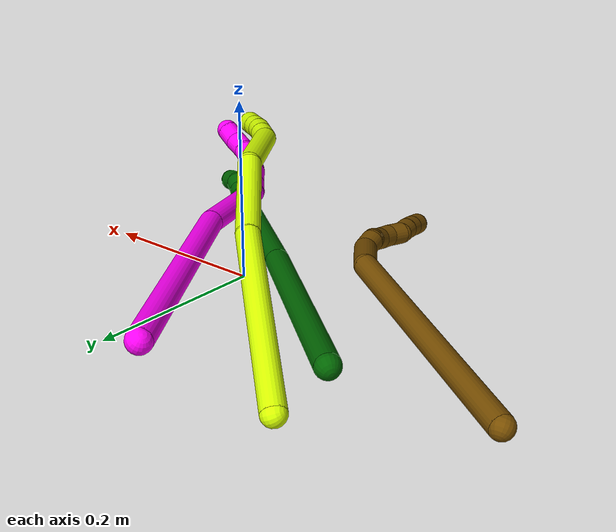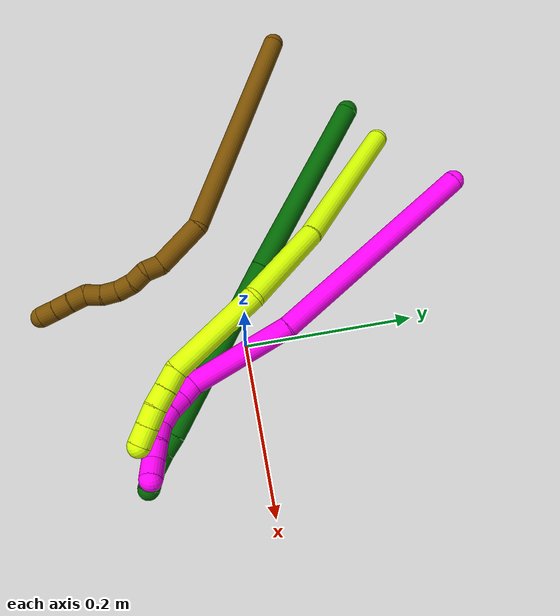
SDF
<sdf version="1.7">
 <world name="default">
  <model name="6">
   <static>0</static>
   <link name="6">
    <collision name="collision-cylinder-e_1_1_4">
     <pose>0.030223 -0.023665 0.104901 0.221879 0.27398 0.03071</pose>
     <geometry><cylinder><radius>0.0125</radius><length>0.223407</length></cylinder></geometry>
     <surface>
      <friction><ode><mu>1.16</mu><mu2>1.16</mu2><slip1>0</slip1><slip2>0</slip2></ode></friction>
      <contact><ode><kp>1e+06</kp><kd>1</kd><max_vel>0</max_vel><min_depth>0.001</min_depth></ode></contact>
     </surface>
    </collision>
    <visual name="visual-cylinder-e_1_1_4">
     <pose>0.030223 -0.023665 0.104901 0.221879 0.27398 0.03071</pose>
     <geometry><cylinder><radius>0.0125</radius><length>0.223407</length></cylinder></geometry>
     <material><ambient>0 0.392157 0.003922 1</ambient></material>
    </visual>
    <collision name="collision-cylinder-e_2_4_5">
     <pose>0.092264 -0.068843 0.309216 0.213117 0.303173 0.032676</pose>
     <geometry><cylinder><radius>0.0125</radius><length>0.213151</length></cylinder></geometry>
     <surface>
      <friction><ode><mu>1.16</mu><mu2>1.16</mu2><slip1>0</slip1><slip2>0</slip2></ode></friction>
      <contact><ode><kp>1e+06</kp><kd>1</kd><max_vel>0</max_vel><min_depth>0.001</min_depth></ode></contact>
     </surface>
    </collision>
    <visual name="visual-cylinder-e_2_4_5">
     <pose>0.092264 -0.068843 0.309216 0.213117 0.303173 0.032676</pose>
     <geometry><cylinder><radius>0.0125</radius><length>0.213151</length></cylinder></geometry>
     <material><ambient>0 0.392157 0.003922 1</ambient></material>
    </visual>
    <collision name="collision-cylinder-e_3_5_6">
     <pose>0.126491 -0.093307 0.419227 0.271483 0.215581 0.029557</pose>
     <geometry><cylinder><radius>0.0125</radius><length>0.022521</length></cylinder></geometry>
     <surface>
      <friction><ode><mu>1.16</mu><mu2>1.16</mu2><slip1>0</slip1><slip2>0</slip2></ode></friction>
      <contact><ode><kp>1e+06</kp><kd>1</kd><max_vel>0</max_vel><min_depth>0.001</min_depth></ode></contact>
     </surface>
    </collision>
    <visual name="visual-cylinder-e_3_5_6">
     <pose>0.126491 -0.093307 0.419227 0.271483 0.215581 0.029557</pose>
     <geometry><cylinder><radius>0.0125</radius><length>0.022521</length></cylinder></geometry>
     <material><ambient>0 0.392157 0.003922 1</ambient></material>
    </visual>
    <collision name="collision-cylinder-e_4_6_7">
     <pose>0.130087 -0.097475 0.440047 0.118683 0.114765 0.006826</pose>
     <geometry><cylinder><radius>0.0125</radius><length>0.020727</length></cylinder></geometry>
     <surface>
      <friction><ode><mu>1.16</mu><mu2>1.16</mu2><slip1>0</slip1><slip2>0</slip2></ode></friction>
      <contact><ode><kp>1e+06</kp><kd>1</kd><max_vel>0</max_vel><min_depth>0.001</min_depth></ode></contact>
     </surface>
    </collision>
    <visual name="visual-cylinder-e_4_6_7">
     <pose>0.130087 -0.097475 0.440047 0.118683 0.114765 0.006826</pose>
     <geometry><cylinder><radius>0.0125</radius><length>0.020727</length></cylinder></geometry>
     <material><ambient>0 0.392157 0.003922 1</ambient></material>
    </visual>
    <collision name="collision-cylinder-e_5_7_2">
     <pose>0.136096 -0.099125 0.45913 0.048622 0.497894 0.012363</pose>
     <geometry><cylinder><radius>0.0125</radius><length>0.020194</length></cylinder></geometry>
     <surface>
      <friction><ode><mu>1.16</mu><mu2>1.16</mu2><slip1>0</slip1><slip2>0</slip2></ode></friction>
      <contact><ode><kp>1e+06</kp><kd>1</kd><max_vel>0</max_vel><min_depth>0.001</min_depth></ode></contact>
     </surface>
    </collision>
    <visual name="visual-cylinder-e_5_7_2">
     <pose>0.136096 -0.099125 0.45913 0.048622 0.497894 0.012363</pose>
     <geometry><cylinder><radius>0.0125</radius><length>0.020194</length></cylinder></geometry>
     <material><ambient>0 0.392157 0.003922 1</ambient></material>
    </visual>
    <collision name="collision-sphere-2">
     <pose>0.140918 -0.099557 0.467991 0 -0 0</pose>
     <geometry><sphere><radius>0.0125</radius></sphere></geometry>
     <surface>
      <friction><ode><mu>1.16</mu><mu2>1.16</mu2><slip1>0</slip1><slip2>0</slip2></ode></friction>
      <contact><ode><kp>1e+06</kp><kd>1</kd><max_vel>0</max_vel><min_depth>0.001</min_depth></ode></contact>
     </surface>
    </collision>
    <visual name="visual-sphere-2">
     <pose>0.140918 -0.099557 0.467991 0 -0 0</pose>
     <geometry><sphere><radius>0.0125</radius></sphere></geometry>
     <material><ambient>0 0.392157 0.003922 1</ambient></material>
    </visual>
    <collision name="collision-sphere-7">
     <pose>0.131273 -0.098694 0.45027 0 -0 0</pose>
     <geometry><sphere><radius>0.0125</radius></sphere></geometry>
     <surface>
      <friction><ode><mu>1.16</mu><mu2>1.16</mu2><slip1>0</slip1><slip2>0</slip2></ode></friction>
      <contact><ode><kp>1e+06</kp><kd>1</kd><max_vel>0</max_vel><min_depth>0.001</min_depth></ode></contact>
     </surface>
    </collision>
    <visual name="visual-sphere-7">
     <pose>0.131273 -0.098694 0.45027 0 -0 0</pose>
     <geometry><sphere><radius>0.0125</radius></sphere></geometry>
     <material><ambient>0 0.392157 0.003922 1</ambient></material>
    </visual>
    <collision name="collision-sphere-6">
     <pose>0.1289 -0.096256 0.429824 0 -0 0</pose>
     <geometry><sphere><radius>0.0125</radius></sphere></geometry>
     <surface>
      <friction><ode><mu>1.16</mu><mu2>1.16</mu2><slip1>0</slip1><slip2>0</slip2></ode></friction>
      <contact><ode><kp>1e+06</kp><kd>1</kd><max_vel>0</max_vel><min_depth>0.001</min_depth></ode></contact>
     </surface>
    </collision>
    <visual name="visual-sphere-6">
     <pose>0.1289 -0.096256 0.429824 0 -0 0</pose>
     <geometry><sphere><radius>0.0125</radius></sphere></geometry>
     <material><ambient>0 0.392157 0.003922 1</ambient></material>
    </visual>
    <collision name="collision-sphere-5">
     <pose>0.124082 -0.090357 0.40863 0 -0 0</pose>
     <geometry><sphere><radius>0.0125</radius></sphere></geometry>
     <surface>
      <friction><ode><mu>1.16</mu><mu2>1.16</mu2><slip1>0</slip1><slip2>0</slip2></ode></friction>
      <contact><ode><kp>1e+06</kp><kd>1</kd><max_vel>0</max_vel><min_depth>0.001</min_depth></ode></contact>
     </surface>
    </collision>
    <visual name="visual-sphere-5">
     <pose>0.124082 -0.090357 0.40863 0 -0 0</pose>
     <geometry><sphere><radius>0.0125</radius></sphere></geometry>
     <material><ambient>0 0.392157 0.003922 1</ambient></material>
    </visual>
    <collision name="collision-sphere-1">
     <geometry><sphere><radius>0.0125</radius></sphere></geometry>
     <surface>
      <friction><ode><mu>1.16</mu><mu2>1.16</mu2><slip1>0</slip1><slip2>0</slip2></ode></friction>
      <contact><ode><kp>1e+06</kp><kd>1</kd><max_vel>0</max_vel><min_depth>0.001</min_depth></ode></contact>
     </surface>
    </collision>
    <visual name="visual-sphere-1">
     <geometry><sphere><radius>0.0125</radius></sphere></geometry>
     <material><ambient>0 0.392157 0.003922 1</ambient></material>
    </visual>
    <collision name="collision-sphere-4">
     <pose>0.060446 -0.04733 0.209802 0 -0 0</pose>
     <geometry><sphere><radius>0.0125</radius></sphere></geometry>
     <surface>
      <friction><ode><mu>1.16</mu><mu2>1.16</mu2><slip1>0</slip1><slip2>0</slip2></ode></friction>
      <contact><ode><kp>1e+06</kp><kd>1</kd><max_vel>0</max_vel><min_depth>0.001</min_depth></ode></contact>
     </surface>
    </collision>
    <visual name="visual-sphere-4">
     <pose>0.060446 -0.04733 0.209802 0 -0 0</pose>
     <geometry><sphere><radius>0.0125</radius></sphere></geometry>
     <material><ambient>0 0.392157 0.003922 1</ambient></material>
    </visual>
    <inertial>
     <pose>0.069423 -0.052169 0.234358 0 -0 0</pose>
     <mass>0.5</mass>
     <inertia>
      <ixx>0.001749</ixx>
      <ixy>0</ixy>
      <ixz>0</ixz>
      <iyy>0.001765</iyy>
      <iyz>0</iyz>
      <izz>-9.8e-05</izz>
     </inertia>
    </inertial>
   </link>
   <pose>-0.255596 0.169237 0.051271 0.680071 1.14099 0.195525</pose>
  </model>
  <model name="10">
   <static>0</static>
   <link name="10">
    <collision name="collision-cylinder-e_1_1_4">
     <pose>0.033992 -0.10799 0.063545 1.03892 0.264909 0.152086</pose>
     <geometry><cylinder><radius>0.0125</radius><length>0.259656</length></cylinder></geometry>
     <surface>
      <friction><ode><mu>1.16</mu><mu2>1.16</mu2><slip1>0</slip1><slip2>0</slip2></ode></friction>
      <contact><ode><kp>1e+06</kp><kd>1</kd><max_vel>0</max_vel><min_depth>0.001</min_depth></ode></contact>
     </surface>
    </collision>
    <visual name="visual-cylinder-e_1_1_4">
     <pose>0.033992 -0.10799 0.063545 1.03892 0.264909 0.152086</pose>
     <geometry><cylinder><radius>0.0125</radius><length>0.259656</length></cylinder></geometry>
     <material><ambient>1 0 0.964706 1</ambient></material>
    </visual>
    <collision name="collision-cylinder-e_2_4_5">
     <pose>0.095217 -0.262169 0.154017 1.04299 0.471114 0.27407</pose>
     <geometry><cylinder><radius>0.0125</radius><length>0.120001</length></cylinder></geometry>
     <surface>
      <friction><ode><mu>1.16</mu><mu2>1.16</mu2><slip1>0</slip1><slip2>0</slip2></ode></friction>
      <contact><ode><kp>1e+06</kp><kd>1</kd><max_vel>0</max_vel><min_depth>0.001</min_depth></ode></contact>
     </surface>
    </collision>
    <visual name="visual-cylinder-e_2_4_5">
     <pose>0.095217 -0.262169 0.154017 1.04299 0.471114 0.27407</pose>
     <geometry><cylinder><radius>0.0125</radius><length>0.120001</length></cylinder></geometry>
     <material><ambient>1 0 0.964706 1</ambient></material>
    </visual>
    <collision name="collision-cylinder-e_3_5_6">
     <pose>0.12236 -0.317726 0.184725 1.18723 -0.008817 -0.005949</pose>
     <geometry><cylinder><radius>0.0125</radius><length>0.020207</length></cylinder></geometry>
     <surface>
      <friction><ode><mu>1.16</mu><mu2>1.16</mu2><slip1>0</slip1><slip2>0</slip2></ode></friction>
      <contact><ode><kp>1e+06</kp><kd>1</kd><max_vel>0</max_vel><min_depth>0.001</min_depth></ode></contact>
     </surface>
    </collision>
    <visual name="visual-cylinder-e_3_5_6">
     <pose>0.12236 -0.317726 0.184725 1.18723 -0.008817 -0.005949</pose>
     <geometry><cylinder><radius>0.0125</radius><length>0.020207</length></cylinder></geometry>
     <material><ambient>1 0 0.964706 1</ambient></material>
    </visual>
    <collision name="collision-cylinder-e_4_6_7">
     <pose>0.121963 -0.336906 0.190425 1.37756 -0.030867 -0.025413</pose>
     <geometry><cylinder><radius>0.0125</radius><length>0.020002</length></cylinder></geometry>
     <surface>
      <friction><ode><mu>1.16</mu><mu2>1.16</mu2><slip1>0</slip1><slip2>0</slip2></ode></friction>
      <contact><ode><kp>1e+06</kp><kd>1</kd><max_vel>0</max_vel><min_depth>0.001</min_depth></ode></contact>
     </surface>
    </collision>
    <visual name="visual-cylinder-e_4_6_7">
     <pose>0.121963 -0.336906 0.190425 1.37756 -0.030867 -0.025413</pose>
     <geometry><cylinder><radius>0.0125</radius><length>0.020002</length></cylinder></geometry>
     <material><ambient>1 0 0.964706 1</ambient></material>
    </visual>
    <collision name="collision-cylinder-e_5_7_8">
     <pose>0.11962 -0.355996 0.195497 1.24339 -0.204637 -0.146866</pose>
     <geometry><cylinder><radius>0.0125</radius><length>0.020019</length></cylinder></geometry>
     <surface>
      <friction><ode><mu>1.16</mu><mu2>1.16</mu2><slip1>0</slip1><slip2>0</slip2></ode></friction>
      <contact><ode><kp>1e+06</kp><kd>1</kd><max_vel>0</max_vel><min_depth>0.001</min_depth></ode></contact>
     </surface>
    </collision>
    <visual name="visual-cylinder-e_5_7_8">
     <pose>0.11962 -0.355996 0.195497 1.24339 -0.204637 -0.146866</pose>
     <geometry><cylinder><radius>0.0125</radius><length>0.020019</length></cylinder></geometry>
     <material><ambient>1 0 0.964706 1</ambient></material>
    </visual>
    <collision name="collision-cylinder-e_6_8_9">
     <pose>0.112607 -0.3736 0.201146 1.27927 -0.520276 -0.39099</pose>
     <geometry><cylinder><radius>0.0125</radius><length>0.020032</length></cylinder></geometry>
     <surface>
      <friction><ode><mu>1.16</mu><mu2>1.16</mu2><slip1>0</slip1><slip2>0</slip2></ode></friction>
      <contact><ode><kp>1e+06</kp><kd>1</kd><max_vel>0</max_vel><min_depth>0.001</min_depth></ode></contact>
     </surface>
    </collision>
    <visual name="visual-cylinder-e_6_8_9">
     <pose>0.112607 -0.3736 0.201146 1.27927 -0.520276 -0.39099</pose>
     <geometry><cylinder><radius>0.0125</radius><length>0.020032</length></cylinder></geometry>
     <material><ambient>1 0 0.964706 1</ambient></material>
    </visual>
    <collision name="collision-cylinder-e_7_9_10">
     <pose>0.102612 -0.389506 0.20784 1.06533 -0.524732 -0.314023</pose>
     <geometry><cylinder><radius>0.0125</radius><length>0.020025</length></cylinder></geometry>
     <surface>
      <friction><ode><mu>1.16</mu><mu2>1.16</mu2><slip1>0</slip1><slip2>0</slip2></ode></friction>
      <contact><ode><kp>1e+06</kp><kd>1</kd><max_vel>0</max_vel><min_depth>0.001</min_depth></ode></contact>
     </surface>
    </collision>
    <visual name="visual-cylinder-e_7_9_10">
     <pose>0.102612 -0.389506 0.20784 1.06533 -0.524732 -0.314023</pose>
     <geometry><cylinder><radius>0.0125</radius><length>0.020025</length></cylinder></geometry>
     <material><ambient>1 0 0.964706 1</ambient></material>
    </visual>
    <collision name="collision-cylinder-e_8_10_2">
     <pose>0.091962 -0.404987 0.214574 1.2599 -0.596442 -0.44091</pose>
     <geometry><cylinder><radius>0.0125</radius><length>0.020058</length></cylinder></geometry>
     <surface>
      <friction><ode><mu>1.16</mu><mu2>1.16</mu2><slip1>0</slip1><slip2>0</slip2></ode></friction>
      <contact><ode><kp>1e+06</kp><kd>1</kd><max_vel>0</max_vel><min_depth>0.001</min_depth></ode></contact>
     </surface>
    </collision>
    <visual name="visual-cylinder-e_8_10_2">
     <pose>0.091962 -0.404987 0.214574 1.2599 -0.596442 -0.44091</pose>
     <geometry><cylinder><radius>0.0125</radius><length>0.020058</length></cylinder></geometry>
     <material><ambient>1 0 0.964706 1</ambient></material>
    </visual>
    <collision name="collision-sphere-2">
     <pose>0.086329 -0.412887 0.217112 0 -0 0</pose>
     <geometry><sphere><radius>0.0125</radius></sphere></geometry>
     <surface>
      <friction><ode><mu>1.16</mu><mu2>1.16</mu2><slip1>0</slip1><slip2>0</slip2></ode></friction>
      <contact><ode><kp>1e+06</kp><kd>1</kd><max_vel>0</max_vel><min_depth>0.001</min_depth></ode></contact>
     </surface>
    </collision>
    <visual name="visual-sphere-2">
     <pose>0.086329 -0.412887 0.217112 0 -0 0</pose>
     <geometry><sphere><radius>0.0125</radius></sphere></geometry>
     <material><ambient>1 0 0.964706 1</ambient></material>
    </visual>
    <collision name="collision-sphere-10">
     <pose>0.097595 -0.397088 0.212036 0 -0 0</pose>
     <geometry><sphere><radius>0.0125</radius></sphere></geometry>
     <surface>
      <friction><ode><mu>1.16</mu><mu2>1.16</mu2><slip1>0</slip1><slip2>0</slip2></ode></friction>
      <contact><ode><kp>1e+06</kp><kd>1</kd><max_vel>0</max_vel><min_depth>0.001</min_depth></ode></contact>
     </surface>
    </collision>
    <visual name="visual-sphere-10">
     <pose>0.097595 -0.397088 0.212036 0 -0 0</pose>
     <geometry><sphere><radius>0.0125</radius></sphere></geometry>
     <material><ambient>1 0 0.964706 1</ambient></material>
    </visual>
    <collision name="collision-sphere-9">
     <pose>0.107628 -0.381924 0.203644 0 -0 0</pose>
     <geometry><sphere><radius>0.0125</radius></sphere></geometry>
     <surface>
      <friction><ode><mu>1.16</mu><mu2>1.16</mu2><slip1>0</slip1><slip2>0</slip2></ode></friction>
      <contact><ode><kp>1e+06</kp><kd>1</kd><max_vel>0</max_vel><min_depth>0.001</min_depth></ode></contact>
     </surface>
    </collision>
    <visual name="visual-sphere-9">
     <pose>0.107628 -0.381924 0.203644 0 -0 0</pose>
     <geometry><sphere><radius>0.0125</radius></sphere></geometry>
     <material><ambient>1 0 0.964706 1</ambient></material>
    </visual>
    <collision name="collision-sphere-4">
     <pose>0.067984 -0.215981 0.127091 0 -0 0</pose>
     <geometry><sphere><radius>0.0125</radius></sphere></geometry>
     <surface>
      <friction><ode><mu>1.16</mu><mu2>1.16</mu2><slip1>0</slip1><slip2>0</slip2></ode></friction>
      <contact><ode><kp>1e+06</kp><kd>1</kd><max_vel>0</max_vel><min_depth>0.001</min_depth></ode></contact>
     </surface>
    </collision>
    <visual name="visual-sphere-4">
     <pose>0.067984 -0.215981 0.127091 0 -0 0</pose>
     <geometry><sphere><radius>0.0125</radius></sphere></geometry>
     <material><ambient>1 0 0.964706 1</ambient></material>
    </visual>
    <collision name="collision-sphere-1">
     <geometry><sphere><radius>0.0125</radius></sphere></geometry>
     <surface>
      <friction><ode><mu>1.16</mu><mu2>1.16</mu2><slip1>0</slip1><slip2>0</slip2></ode></friction>
      <contact><ode><kp>1e+06</kp><kd>1</kd><max_vel>0</max_vel><min_depth>0.001</min_depth></ode></contact>
     </surface>
    </collision>
    <visual name="visual-sphere-1">
     <geometry><sphere><radius>0.0125</radius></sphere></geometry>
     <material><ambient>1 0 0.964706 1</ambient></material>
    </visual>
    <collision name="collision-sphere-8">
     <pose>0.117586 -0.365276 0.198649 0 -0 0</pose>
     <geometry><sphere><radius>0.0125</radius></sphere></geometry>
     <surface>
      <friction><ode><mu>1.16</mu><mu2>1.16</mu2><slip1>0</slip1><slip2>0</slip2></ode></friction>
      <contact><ode><kp>1e+06</kp><kd>1</kd><max_vel>0</max_vel><min_depth>0.001</min_depth></ode></contact>
     </surface>
    </collision>
    <visual name="visual-sphere-8">
     <pose>0.117586 -0.365276 0.198649 0 -0 0</pose>
     <geometry><sphere><radius>0.0125</radius></sphere></geometry>
     <material><ambient>1 0 0.964706 1</ambient></material>
    </visual>
    <collision name="collision-sphere-5">
     <pose>0.122449 -0.308357 0.180944 0 -0 0</pose>
     <geometry><sphere><radius>0.0125</radius></sphere></geometry>
     <surface>
      <friction><ode><mu>1.16</mu><mu2>1.16</mu2><slip1>0</slip1><slip2>0</slip2></ode></friction>
      <contact><ode><kp>1e+06</kp><kd>1</kd><max_vel>0</max_vel><min_depth>0.001</min_depth></ode></contact>
     </surface>
    </collision>
    <visual name="visual-sphere-5">
     <pose>0.122449 -0.308357 0.180944 0 -0 0</pose>
     <geometry><sphere><radius>0.0125</radius></sphere></geometry>
     <material><ambient>1 0 0.964706 1</ambient></material>
    </visual>
    <collision name="collision-sphere-6">
     <pose>0.122271 -0.327095 0.188506 0 -0 0</pose>
     <geometry><sphere><radius>0.0125</radius></sphere></geometry>
     <surface>
      <friction><ode><mu>1.16</mu><mu2>1.16</mu2><slip1>0</slip1><slip2>0</slip2></ode></friction>
      <contact><ode><kp>1e+06</kp><kd>1</kd><max_vel>0</max_vel><min_depth>0.001</min_depth></ode></contact>
     </surface>
    </collision>
    <visual name="visual-sphere-6">
     <pose>0.122271 -0.327095 0.188506 0 -0 0</pose>
     <geometry><sphere><radius>0.0125</radius></sphere></geometry>
     <material><ambient>1 0 0.964706 1</ambient></material>
    </visual>
    <collision name="collision-sphere-7">
     <pose>0.121654 -0.346716 0.192345 0 -0 0</pose>
     <geometry><sphere><radius>0.0125</radius></sphere></geometry>
     <surface>
      <friction><ode><mu>1.16</mu><mu2>1.16</mu2><slip1>0</slip1><slip2>0</slip2></ode></friction>
      <contact><ode><kp>1e+06</kp><kd>1</kd><max_vel>0</max_vel><min_depth>0.001</min_depth></ode></contact>
     </surface>
    </collision>
    <visual name="visual-sphere-7">
     <pose>0.121654 -0.346716 0.192345 0 -0 0</pose>
     <geometry><sphere><radius>0.0125</radius></sphere></geometry>
     <material><ambient>1 0 0.964706 1</ambient></material>
    </visual>
    <inertial>
     <pose>0.067428 -0.206387 0.117865 0 -0 0</pose>
     <mass>0.5</mass>
     <inertia>
      <ixx>0.001792</ixx>
      <ixy>0</ixy>
      <ixz>0</ixz>
      <iyy>0.001095</iyy>
      <iyz>0</iyz>
      <izz>0.000911</izz>
     </inertia>
    </inertial>
   </link>
   <pose>-0.136498 0.267365 0.074418 -2.48332 0.373119 -2.29402</pose>
  </model>
  <model name="12">
   <static>0</static>
   <link name="12">
    <collision name="collision-cylinder-e_1_1_4">
     <pose>0.047112 -0.104522 0.076831 0.936918 0.348361 0.177617</pose>
     <geometry><cylinder><radius>0.0125</radius><length>0.276024</length></cylinder></geometry>
     <surface>
      <friction><ode><mu>1.16</mu><mu2>1.16</mu2><slip1>0</slip1><slip2>0</slip2></ode></friction>
      <contact><ode><kp>1e+06</kp><kd>1</kd><max_vel>0</max_vel><min_depth>0.001</min_depth></ode></contact>
     </surface>
    </collision>
    <visual name="visual-cylinder-e_1_1_4">
     <pose>0.047112 -0.104522 0.076831 0.936918 0.348361 0.177617</pose>
     <geometry><cylinder><radius>0.0125</radius><length>0.276024</length></cylinder></geometry>
     <material><ambient>0.466667 0.301961 0 1</ambient></material>
    </visual>
    <collision name="collision-cylinder-e_2_4_5">
     <pose>0.090301 -0.234049 0.172834 0.916689 -0.123831 -0.061156</pose>
     <geometry><cylinder><radius>0.0125</radius><length>0.063503</length></cylinder></geometry>
     <surface>
      <friction><ode><mu>1.16</mu><mu2>1.16</mu2><slip1>0</slip1><slip2>0</slip2></ode></friction>
      <contact><ode><kp>1e+06</kp><kd>1</kd><max_vel>0</max_vel><min_depth>0.001</min_depth></ode></contact>
     </surface>
    </collision>
    <visual name="visual-cylinder-e_2_4_5">
     <pose>0.090301 -0.234049 0.172834 0.916689 -0.123831 -0.061156</pose>
     <geometry><cylinder><radius>0.0125</radius><length>0.063503</length></cylinder></geometry>
     <material><ambient>0.466667 0.301961 0 1</ambient></material>
    </visual>
    <collision name="collision-cylinder-e_3_5_6">
     <pose>0.083219 -0.263828 0.200235 0.525638 -0.320743 -0.086986</pose>
     <geometry><cylinder><radius>0.0125</radius><length>0.020052</length></cylinder></geometry>
     <surface>
      <friction><ode><mu>1.16</mu><mu2>1.16</mu2><slip1>0</slip1><slip2>0</slip2></ode></friction>
      <contact><ode><kp>1e+06</kp><kd>1</kd><max_vel>0</max_vel><min_depth>0.001</min_depth></ode></contact>
     </surface>
    </collision>
    <visual name="visual-cylinder-e_3_5_6">
     <pose>0.083219 -0.263828 0.200235 0.525638 -0.320743 -0.086986</pose>
     <geometry><cylinder><radius>0.0125</radius><length>0.020052</length></cylinder></geometry>
     <material><ambient>0.466667 0.301961 0 1</ambient></material>
    </visual>
    <collision name="collision-cylinder-e_4_6_7">
     <pose>0.077063 -0.276949 0.213287 1.0469 -0.301242 -0.174744</pose>
     <geometry><cylinder><radius>0.0125</radius><length>0.020188</length></cylinder></geometry>
     <surface>
      <friction><ode><mu>1.16</mu><mu2>1.16</mu2><slip1>0</slip1><slip2>0</slip2></ode></friction>
      <contact><ode><kp>1e+06</kp><kd>1</kd><max_vel>0</max_vel><min_depth>0.001</min_depth></ode></contact>
     </surface>
    </collision>
    <visual name="visual-cylinder-e_4_6_7">
     <pose>0.077063 -0.276949 0.213287 1.0469 -0.301242 -0.174744</pose>
     <geometry><cylinder><radius>0.0125</radius><length>0.020188</length></cylinder></geometry>
     <material><ambient>0.466667 0.301961 0 1</ambient></material>
    </visual>
    <collision name="collision-cylinder-e_5_7_8">
     <pose>0.068712 -0.292035 0.223274 0.917009 -0.562726 -0.283412</pose>
     <geometry><cylinder><radius>0.0125</radius><length>0.020078</length></cylinder></geometry>
     <surface>
      <friction><ode><mu>1.16</mu><mu2>1.16</mu2><slip1>0</slip1><slip2>0</slip2></ode></friction>
      <contact><ode><kp>1e+06</kp><kd>1</kd><max_vel>0</max_vel><min_depth>0.001</min_depth></ode></contact>
     </surface>
    </collision>
    <visual name="visual-cylinder-e_5_7_8">
     <pose>0.068712 -0.292035 0.223274 0.917009 -0.562726 -0.283412</pose>
     <geometry><cylinder><radius>0.0125</radius><length>0.020078</length></cylinder></geometry>
     <material><ambient>0.466667 0.301961 0 1</ambient></material>
    </visual>
    <collision name="collision-cylinder-e_6_8_9">
     <pose>0.057461 -0.303429 0.235085 0.610819 -0.628312 -0.204163</pose>
     <geometry><cylinder><radius>0.0125</radius><length>0.02006</length></cylinder></geometry>
     <surface>
      <friction><ode><mu>1.16</mu><mu2>1.16</mu2><slip1>0</slip1><slip2>0</slip2></ode></friction>
      <contact><ode><kp>1e+06</kp><kd>1</kd><max_vel>0</max_vel><min_depth>0.001</min_depth></ode></contact>
     </surface>
    </collision>
    <visual name="visual-cylinder-e_6_8_9">
     <pose>0.057461 -0.303429 0.235085 0.610819 -0.628312 -0.204163</pose>
     <geometry><cylinder><radius>0.0125</radius><length>0.02006</length></cylinder></geometry>
     <material><ambient>0.466667 0.301961 0 1</ambient></material>
    </visual>
    <collision name="collision-cylinder-e_7_9_10">
     <pose>0.044206 -0.310306 0.248179 0.331976 -0.823511 -0.146067</pose>
     <geometry><cylinder><radius>0.0125</radius><length>0.020067</length></cylinder></geometry>
     <surface>
      <friction><ode><mu>1.16</mu><mu2>1.16</mu2><slip1>0</slip1><slip2>0</slip2></ode></friction>
      <contact><ode><kp>1e+06</kp><kd>1</kd><max_vel>0</max_vel><min_depth>0.001</min_depth></ode></contact>
     </surface>
    </collision>
    <visual name="visual-cylinder-e_7_9_10">
     <pose>0.044206 -0.310306 0.248179 0.331976 -0.823511 -0.146067</pose>
     <geometry><cylinder><radius>0.0125</radius><length>0.020067</length></cylinder></geometry>
     <material><ambient>0.466667 0.301961 0 1</ambient></material>
    </visual>
    <collision name="collision-cylinder-e_8_10_11">
     <pose>0.032837 -0.318503 0.261589 0.709163 -0.41196 -0.154406</pose>
     <geometry><cylinder><radius>0.0125</radius><length>0.020024</length></cylinder></geometry>
     <surface>
      <friction><ode><mu>1.16</mu><mu2>1.16</mu2><slip1>0</slip1><slip2>0</slip2></ode></friction>
      <contact><ode><kp>1e+06</kp><kd>1</kd><max_vel>0</max_vel><min_depth>0.001</min_depth></ode></contact>
     </surface>
    </collision>
    <visual name="visual-cylinder-e_8_10_11">
     <pose>0.032837 -0.318503 0.261589 0.709163 -0.41196 -0.154406</pose>
     <geometry><cylinder><radius>0.0125</radius><length>0.020024</length></cylinder></geometry>
     <material><ambient>0.466667 0.301961 0 1</ambient></material>
    </visual>
    <collision name="collision-cylinder-e_9_11_12">
     <pose>0.024258 -0.330814 0.274794 0.792934 -0.474563 -0.201795</pose>
     <geometry><cylinder><radius>0.0125</radius><length>0.020002</length></cylinder></geometry>
     <surface>
      <friction><ode><mu>1.16</mu><mu2>1.16</mu2><slip1>0</slip1><slip2>0</slip2></ode></friction>
      <contact><ode><kp>1e+06</kp><kd>1</kd><max_vel>0</max_vel><min_depth>0.001</min_depth></ode></contact>
     </surface>
    </collision>
    <visual name="visual-cylinder-e_9_11_12">
     <pose>0.024258 -0.330814 0.274794 0.792934 -0.474563 -0.201795</pose>
     <geometry><cylinder><radius>0.0125</radius><length>0.020002</length></cylinder></geometry>
     <material><ambient>0.466667 0.301961 0 1</ambient></material>
    </visual>
    <collision name="collision-cylinder-e_10_12_2">
     <pose>0.014827 -0.343363 0.287185 0.790529 -0.507616 -0.215618</pose>
     <geometry><cylinder><radius>0.0125</radius><length>0.020002</length></cylinder></geometry>
     <surface>
      <friction><ode><mu>1.16</mu><mu2>1.16</mu2><slip1>0</slip1><slip2>0</slip2></ode></friction>
      <contact><ode><kp>1e+06</kp><kd>1</kd><max_vel>0</max_vel><min_depth>0.001</min_depth></ode></contact>
     </surface>
    </collision>
    <visual name="visual-cylinder-e_10_12_2">
     <pose>0.014827 -0.343363 0.287185 0.790529 -0.507616 -0.215618</pose>
     <geometry><cylinder><radius>0.0125</radius><length>0.020002</length></cylinder></geometry>
     <material><ambient>0.466667 0.301961 0 1</ambient></material>
    </visual>
    <collision name="collision-sphere-2">
     <pose>0.009965 -0.349575 0.293333 0 -0 0</pose>
     <geometry><sphere><radius>0.0125</radius></sphere></geometry>
     <surface>
      <friction><ode><mu>1.16</mu><mu2>1.16</mu2><slip1>0</slip1><slip2>0</slip2></ode></friction>
      <contact><ode><kp>1e+06</kp><kd>1</kd><max_vel>0</max_vel><min_depth>0.001</min_depth></ode></contact>
     </surface>
    </collision>
    <visual name="visual-sphere-2">
     <pose>0.009965 -0.349575 0.293333 0 -0 0</pose>
     <geometry><sphere><radius>0.0125</radius></sphere></geometry>
     <material><ambient>0.466667 0.301961 0 1</ambient></material>
    </visual>
    <collision name="collision-sphere-12">
     <pose>0.019688 -0.337152 0.281036 0 -0 0</pose>
     <geometry><sphere><radius>0.0125</radius></sphere></geometry>
     <surface>
      <friction><ode><mu>1.16</mu><mu2>1.16</mu2><slip1>0</slip1><slip2>0</slip2></ode></friction>
      <contact><ode><kp>1e+06</kp><kd>1</kd><max_vel>0</max_vel><min_depth>0.001</min_depth></ode></contact>
     </surface>
    </collision>
    <visual name="visual-sphere-12">
     <pose>0.019688 -0.337152 0.281036 0 -0 0</pose>
     <geometry><sphere><radius>0.0125</radius></sphere></geometry>
     <material><ambient>0.466667 0.301961 0 1</ambient></material>
    </visual>
    <collision name="collision-sphere-11">
     <pose>0.028828 -0.324477 0.268551 0 -0 0</pose>
     <geometry><sphere><radius>0.0125</radius></sphere></geometry>
     <surface>
      <friction><ode><mu>1.16</mu><mu2>1.16</mu2><slip1>0</slip1><slip2>0</slip2></ode></friction>
      <contact><ode><kp>1e+06</kp><kd>1</kd><max_vel>0</max_vel><min_depth>0.001</min_depth></ode></contact>
     </surface>
    </collision>
    <visual name="visual-sphere-11">
     <pose>0.028828 -0.324477 0.268551 0 -0 0</pose>
     <geometry><sphere><radius>0.0125</radius></sphere></geometry>
     <material><ambient>0.466667 0.301961 0 1</ambient></material>
    </visual>
    <collision name="collision-sphere-10">
     <pose>0.036846 -0.312528 0.254626 0 -0 0</pose>
     <geometry><sphere><radius>0.0125</radius></sphere></geometry>
     <surface>
      <friction><ode><mu>1.16</mu><mu2>1.16</mu2><slip1>0</slip1><slip2>0</slip2></ode></friction>
      <contact><ode><kp>1e+06</kp><kd>1</kd><max_vel>0</max_vel><min_depth>0.001</min_depth></ode></contact>
     </surface>
    </collision>
    <visual name="visual-sphere-10">
     <pose>0.036846 -0.312528 0.254626 0 -0 0</pose>
     <geometry><sphere><radius>0.0125</radius></sphere></geometry>
     <material><ambient>0.466667 0.301961 0 1</ambient></material>
    </visual>
    <collision name="collision-sphere-9">
     <pose>0.051566 -0.308083 0.241732 0 -0 0</pose>
     <geometry><sphere><radius>0.0125</radius></sphere></geometry>
     <surface>
      <friction><ode><mu>1.16</mu><mu2>1.16</mu2><slip1>0</slip1><slip2>0</slip2></ode></friction>
      <contact><ode><kp>1e+06</kp><kd>1</kd><max_vel>0</max_vel><min_depth>0.001</min_depth></ode></contact>
     </surface>
    </collision>
    <visual name="visual-sphere-9">
     <pose>0.051566 -0.308083 0.241732 0 -0 0</pose>
     <geometry><sphere><radius>0.0125</radius></sphere></geometry>
     <material><ambient>0.466667 0.301961 0 1</ambient></material>
    </visual>
    <collision name="collision-sphere-4">
     <pose>0.094223 -0.209044 0.153662 0 -0 0</pose>
     <geometry><sphere><radius>0.0125</radius></sphere></geometry>
     <surface>
      <friction><ode><mu>1.16</mu><mu2>1.16</mu2><slip1>0</slip1><slip2>0</slip2></ode></friction>
      <contact><ode><kp>1e+06</kp><kd>1</kd><max_vel>0</max_vel><min_depth>0.001</min_depth></ode></contact>
     </surface>
    </collision>
    <visual name="visual-sphere-4">
     <pose>0.094223 -0.209044 0.153662 0 -0 0</pose>
     <geometry><sphere><radius>0.0125</radius></sphere></geometry>
     <material><ambient>0.466667 0.301961 0 1</ambient></material>
    </visual>
    <collision name="collision-sphere-1">
     <geometry><sphere><radius>0.0125</radius></sphere></geometry>
     <surface>
      <friction><ode><mu>1.16</mu><mu2>1.16</mu2><slip1>0</slip1><slip2>0</slip2></ode></friction>
      <contact><ode><kp>1e+06</kp><kd>1</kd><max_vel>0</max_vel><min_depth>0.001</min_depth></ode></contact>
     </surface>
    </collision>
    <visual name="visual-sphere-1">
     <geometry><sphere><radius>0.0125</radius></sphere></geometry>
     <material><ambient>0.466667 0.301961 0 1</ambient></material>
    </visual>
    <collision name="collision-sphere-8">
     <pose>0.063356 -0.298775 0.228438 0 -0 0</pose>
     <geometry><sphere><radius>0.0125</radius></sphere></geometry>
     <surface>
      <friction><ode><mu>1.16</mu><mu2>1.16</mu2><slip1>0</slip1><slip2>0</slip2></ode></friction>
      <contact><ode><kp>1e+06</kp><kd>1</kd><max_vel>0</max_vel><min_depth>0.001</min_depth></ode></contact>
     </surface>
    </collision>
    <visual name="visual-sphere-8">
     <pose>0.063356 -0.298775 0.228438 0 -0 0</pose>
     <geometry><sphere><radius>0.0125</radius></sphere></geometry>
     <material><ambient>0.466667 0.301961 0 1</ambient></material>
    </visual>
    <collision name="collision-sphere-5">
     <pose>0.086379 -0.259054 0.192005 0 -0 0</pose>
     <geometry><sphere><radius>0.0125</radius></sphere></geometry>
     <surface>
      <friction><ode><mu>1.16</mu><mu2>1.16</mu2><slip1>0</slip1><slip2>0</slip2></ode></friction>
      <contact><ode><kp>1e+06</kp><kd>1</kd><max_vel>0</max_vel><min_depth>0.001</min_depth></ode></contact>
     </surface>
    </collision>
    <visual name="visual-sphere-5">
     <pose>0.086379 -0.259054 0.192005 0 -0 0</pose>
     <geometry><sphere><radius>0.0125</radius></sphere></geometry>
     <material><ambient>0.466667 0.301961 0 1</ambient></material>
    </visual>
    <collision name="collision-sphere-6">
     <pose>0.080058 -0.268602 0.208465 0 -0 0</pose>
     <geometry><sphere><radius>0.0125</radius></sphere></geometry>
     <surface>
      <friction><ode><mu>1.16</mu><mu2>1.16</mu2><slip1>0</slip1><slip2>0</slip2></ode></friction>
      <contact><ode><kp>1e+06</kp><kd>1</kd><max_vel>0</max_vel><min_depth>0.001</min_depth></ode></contact>
     </surface>
    </collision>
    <visual name="visual-sphere-6">
     <pose>0.080058 -0.268602 0.208465 0 -0 0</pose>
     <geometry><sphere><radius>0.0125</radius></sphere></geometry>
     <material><ambient>0.466667 0.301961 0 1</ambient></material>
    </visual>
    <collision name="collision-sphere-7">
     <pose>0.074068 -0.285295 0.21811 0 -0 0</pose>
     <geometry><sphere><radius>0.0125</radius></sphere></geometry>
     <surface>
      <friction><ode><mu>1.16</mu><mu2>1.16</mu2><slip1>0</slip1><slip2>0</slip2></ode></friction>
      <contact><ode><kp>1e+06</kp><kd>1</kd><max_vel>0</max_vel><min_depth>0.001</min_depth></ode></contact>
     </surface>
    </collision>
    <visual name="visual-sphere-7">
     <pose>0.074068 -0.285295 0.21811 0 -0 0</pose>
     <geometry><sphere><radius>0.0125</radius></sphere></geometry>
     <material><ambient>0.466667 0.301961 0 1</ambient></material>
    </visual>
    <inertial>
     <pose>0.053643 -0.185269 0.142322 0 -0 0</pose>
     <mass>0.5</mass>
     <inertia><ixx>0.001955</ixx><ixy>0</ixy><ixz>0</ixz><iyy>0.0014</iyy><iyz>0</iyz><izz>0.00079</izz></inertia>
    </inertial>
   </link>
   <pose>-0.383293 0.102646 0.012431 0.713022 -0.535288 0.716933</pose>
  </model>
  <model name="15">
   <static>0</static>
   <link name="15">
    <collision name="collision-cylinder-e_1_1_4">
     <pose>0.063003 -0.075989 -0.018194 1.8058 0.678578 0.841408</pose>
     <geometry><cylinder><radius>0.0125</radius><length>0.200745</length></cylinder></geometry>
     <surface>
      <friction><ode><mu>1.16</mu><mu2>1.16</mu2><slip1>0</slip1><slip2>0</slip2></ode></friction>
      <contact><ode><kp>1e+06</kp><kd>1</kd><max_vel>0</max_vel><min_depth>0.001</min_depth></ode></contact>
     </surface>
    </collision>
    <visual name="visual-cylinder-e_1_1_4">
     <pose>0.063003 -0.075989 -0.018194 1.8058 0.678578 0.841408</pose>
     <geometry><cylinder><radius>0.0125</radius><length>0.200745</length></cylinder></geometry>
     <material><ambient>0.835294 1 0 1</ambient></material>
    </visual>
    <collision name="collision-cylinder-e_2_4_5">
     <pose>0.153265 -0.197813 -0.043565 1.7261 0.531234 0.615688</pose>
     <geometry><cylinder><radius>0.0125</radius><length>0.10762</length></cylinder></geometry>
     <surface>
      <friction><ode><mu>1.16</mu><mu2>1.16</mu2><slip1>0</slip1><slip2>0</slip2></ode></friction>
      <contact><ode><kp>1e+06</kp><kd>1</kd><max_vel>0</max_vel><min_depth>0.001</min_depth></ode></contact>
     </surface>
    </collision>
    <visual name="visual-cylinder-e_2_4_5">
     <pose>0.153265 -0.197813 -0.043565 1.7261 0.531234 0.615688</pose>
     <geometry><cylinder><radius>0.0125</radius><length>0.10762</length></cylinder></geometry>
     <material><ambient>0.835294 1 0 1</ambient></material>
    </visual>
    <collision name="collision-cylinder-e_3_5_6">
     <pose>0.186353 -0.296513 -0.0618 1.77703 0.107494 0.132244</pose>
     <geometry><cylinder><radius>0.0125</radius><length>0.108643</length></cylinder></geometry>
     <surface>
      <friction><ode><mu>1.16</mu><mu2>1.16</mu2><slip1>0</slip1><slip2>0</slip2></ode></friction>
      <contact><ode><kp>1e+06</kp><kd>1</kd><max_vel>0</max_vel><min_depth>0.001</min_depth></ode></contact>
     </surface>
    </collision>
    <visual name="visual-cylinder-e_3_5_6">
     <pose>0.186353 -0.296513 -0.0618 1.77703 0.107494 0.132244</pose>
     <geometry><cylinder><radius>0.0125</radius><length>0.108643</length></cylinder></geometry>
     <material><ambient>0.835294 1 0 1</ambient></material>
    </visual>
    <collision name="collision-cylinder-e_4_6_7">
     <pose>0.195115 -0.358453 -0.077807 2.06982 0.276555 0.460383</pose>
     <geometry><cylinder><radius>0.0125</radius><length>0.021493</length></cylinder></geometry>
     <surface>
      <friction><ode><mu>1.16</mu><mu2>1.16</mu2><slip1>0</slip1><slip2>0</slip2></ode></friction>
      <contact><ode><kp>1e+06</kp><kd>1</kd><max_vel>0</max_vel><min_depth>0.001</min_depth></ode></contact>
     </surface>
    </collision>
    <visual name="visual-cylinder-e_4_6_7">
     <pose>0.195115 -0.358453 -0.077807 2.06982 0.276555 0.460383</pose>
     <geometry><cylinder><radius>0.0125</radius><length>0.021493</length></cylinder></geometry>
     <material><ambient>0.835294 1 0 1</ambient></material>
    </visual>
    <collision name="collision-cylinder-e_5_7_8">
     <pose>0.200562 -0.376405 -0.087487 2.06067 0.24484 0.404472</pose>
     <geometry><cylinder><radius>0.0125</radius><length>0.020733</length></cylinder></geometry>
     <surface>
      <friction><ode><mu>1.16</mu><mu2>1.16</mu2><slip1>0</slip1><slip2>0</slip2></ode></friction>
      <contact><ode><kp>1e+06</kp><kd>1</kd><max_vel>0</max_vel><min_depth>0.001</min_depth></ode></contact>
     </surface>
    </collision>
    <visual name="visual-cylinder-e_5_7_8">
     <pose>0.200562 -0.376405 -0.087487 2.06067 0.24484 0.404472</pose>
     <geometry><cylinder><radius>0.0125</radius><length>0.020733</length></cylinder></geometry>
     <material><ambient>0.835294 1 0 1</ambient></material>
    </visual>
    <collision name="collision-cylinder-e_6_8_9">
     <pose>0.205357 -0.393423 -0.097962 2.18505 0.225136 0.429398</pose>
     <geometry><cylinder><radius>0.0125</radius><length>0.020444</length></cylinder></geometry>
     <surface>
      <friction><ode><mu>1.16</mu><mu2>1.16</mu2><slip1>0</slip1><slip2>0</slip2></ode></friction>
      <contact><ode><kp>1e+06</kp><kd>1</kd><max_vel>0</max_vel><min_depth>0.001</min_depth></ode></contact>
     </surface>
    </collision>
    <visual name="visual-cylinder-e_6_8_9">
     <pose>0.205357 -0.393423 -0.097962 2.18505 0.225136 0.429398</pose>
     <geometry><cylinder><radius>0.0125</radius><length>0.020444</length></cylinder></geometry>
     <material><ambient>0.835294 1 0 1</ambient></material>
    </visual>
    <collision name="collision-cylinder-e_7_9_2">
     <pose>0.21014 -0.409633 -0.109353 2.18161 0.248639 0.47116</pose>
     <geometry><cylinder><radius>0.0125</radius><length>0.020322</length></cylinder></geometry>
     <surface>
      <friction><ode><mu>1.16</mu><mu2>1.16</mu2><slip1>0</slip1><slip2>0</slip2></ode></friction>
      <contact><ode><kp>1e+06</kp><kd>1</kd><max_vel>0</max_vel><min_depth>0.001</min_depth></ode></contact>
     </surface>
    </collision>
    <visual name="visual-cylinder-e_7_9_2">
     <pose>0.21014 -0.409633 -0.109353 2.18161 0.248639 0.47116</pose>
     <geometry><cylinder><radius>0.0125</radius><length>0.020322</length></cylinder></geometry>
     <material><ambient>0.835294 1 0 1</ambient></material>
    </visual>
    <collision name="collision-sphere-2">
     <pose>0.21264 -0.417701 -0.115001 0 -0 0</pose>
     <geometry><sphere><radius>0.0125</radius></sphere></geometry>
     <surface>
      <friction><ode><mu>1.16</mu><mu2>1.16</mu2><slip1>0</slip1><slip2>0</slip2></ode></friction>
      <contact><ode><kp>1e+06</kp><kd>1</kd><max_vel>0</max_vel><min_depth>0.001</min_depth></ode></contact>
     </surface>
    </collision>
    <visual name="visual-sphere-2">
     <pose>0.21264 -0.417701 -0.115001 0 -0 0</pose>
     <geometry><sphere><radius>0.0125</radius></sphere></geometry>
     <material><ambient>0.835294 1 0 1</ambient></material>
    </visual>
    <collision name="collision-sphere-9">
     <pose>0.207639 -0.401565 -0.103705 0 -0 0</pose>
     <geometry><sphere><radius>0.0125</radius></sphere></geometry>
     <surface>
      <friction><ode><mu>1.16</mu><mu2>1.16</mu2><slip1>0</slip1><slip2>0</slip2></ode></friction>
      <contact><ode><kp>1e+06</kp><kd>1</kd><max_vel>0</max_vel><min_depth>0.001</min_depth></ode></contact>
     </surface>
    </collision>
    <visual name="visual-sphere-9">
     <pose>0.207639 -0.401565 -0.103705 0 -0 0</pose>
     <geometry><sphere><radius>0.0125</radius></sphere></geometry>
     <material><ambient>0.835294 1 0 1</ambient></material>
    </visual>
    <collision name="collision-sphere-4">
     <pose>0.126005 -0.151978 -0.036388 0 -0 0</pose>
     <geometry><sphere><radius>0.0125</radius></sphere></geometry>
     <surface>
      <friction><ode><mu>1.16</mu><mu2>1.16</mu2><slip1>0</slip1><slip2>0</slip2></ode></friction>
      <contact><ode><kp>1e+06</kp><kd>1</kd><max_vel>0</max_vel><min_depth>0.001</min_depth></ode></contact>
     </surface>
    </collision>
    <visual name="visual-sphere-4">
     <pose>0.126005 -0.151978 -0.036388 0 -0 0</pose>
     <geometry><sphere><radius>0.0125</radius></sphere></geometry>
     <material><ambient>0.835294 1 0 1</ambient></material>
    </visual>
    <collision name="collision-sphere-1">
     <geometry><sphere><radius>0.0125</radius></sphere></geometry>
     <surface>
      <friction><ode><mu>1.16</mu><mu2>1.16</mu2><slip1>0</slip1><slip2>0</slip2></ode></friction>
      <contact><ode><kp>1e+06</kp><kd>1</kd><max_vel>0</max_vel><min_depth>0.001</min_depth></ode></contact>
     </surface>
    </collision>
    <visual name="visual-sphere-1">
     <geometry><sphere><radius>0.0125</radius></sphere></geometry>
     <material><ambient>0.835294 1 0 1</ambient></material>
    </visual>
    <collision name="collision-sphere-8">
     <pose>0.203075 -0.38528 -0.092219 0 -0 0</pose>
     <geometry><sphere><radius>0.0125</radius></sphere></geometry>
     <surface>
      <friction><ode><mu>1.16</mu><mu2>1.16</mu2><slip1>0</slip1><slip2>0</slip2></ode></friction>
      <contact><ode><kp>1e+06</kp><kd>1</kd><max_vel>0</max_vel><min_depth>0.001</min_depth></ode></contact>
     </surface>
    </collision>
    <visual name="visual-sphere-8">
     <pose>0.203075 -0.38528 -0.092219 0 -0 0</pose>
     <geometry><sphere><radius>0.0125</radius></sphere></geometry>
     <material><ambient>0.835294 1 0 1</ambient></material>
    </visual>
    <collision name="collision-sphere-5">
     <pose>0.180525 -0.243649 -0.050741 0 -0 0</pose>
     <geometry><sphere><radius>0.0125</radius></sphere></geometry>
     <surface>
      <friction><ode><mu>1.16</mu><mu2>1.16</mu2><slip1>0</slip1><slip2>0</slip2></ode></friction>
      <contact><ode><kp>1e+06</kp><kd>1</kd><max_vel>0</max_vel><min_depth>0.001</min_depth></ode></contact>
     </surface>
    </collision>
    <visual name="visual-sphere-5">
     <pose>0.180525 -0.243649 -0.050741 0 -0 0</pose>
     <geometry><sphere><radius>0.0125</radius></sphere></geometry>
     <material><ambient>0.835294 1 0 1</ambient></material>
    </visual>
    <collision name="collision-sphere-6">
     <pose>0.192181 -0.349376 -0.07286 0 -0 0</pose>
     <geometry><sphere><radius>0.0125</radius></sphere></geometry>
     <surface>
      <friction><ode><mu>1.16</mu><mu2>1.16</mu2><slip1>0</slip1><slip2>0</slip2></ode></friction>
      <contact><ode><kp>1e+06</kp><kd>1</kd><max_vel>0</max_vel><min_depth>0.001</min_depth></ode></contact>
     </surface>
    </collision>
    <visual name="visual-sphere-6">
     <pose>0.192181 -0.349376 -0.07286 0 -0 0</pose>
     <geometry><sphere><radius>0.0125</radius></sphere></geometry>
     <material><ambient>0.835294 1 0 1</ambient></material>
    </visual>
    <collision name="collision-sphere-7">
     <pose>0.19805 -0.367531 -0.082755 0 -0 0</pose>
     <geometry><sphere><radius>0.0125</radius></sphere></geometry>
     <surface>
      <friction><ode><mu>1.16</mu><mu2>1.16</mu2><slip1>0</slip1><slip2>0</slip2></ode></friction>
      <contact><ode><kp>1e+06</kp><kd>1</kd><max_vel>0</max_vel><min_depth>0.001</min_depth></ode></contact>
     </surface>
    </collision>
    <visual name="visual-sphere-7">
     <pose>0.19805 -0.367531 -0.082755 0 -0 0</pose>
     <geometry><sphere><radius>0.0125</radius></sphere></geometry>
     <material><ambient>0.835294 1 0 1</ambient></material>
    </visual>
    <inertial>
     <pose>0.132417 -0.201266 -0.045532 0 -0 0</pose>
     <mass>0.5</mass>
     <inertia>
      <ixx>0.001028</ixx>
      <ixy>0</ixy>
      <ixz>0</ixz>
      <iyy>0.000633</iyy>
      <iyz>0</iyz>
      <izz>0.000216</izz>
     </inertia>
    </inertial>
   </link>
   <pose>-0.228429 0.206503 0.012418 0.126845 -1.12831 0.24038</pose>
  </model>
 </world>
</sdf>
